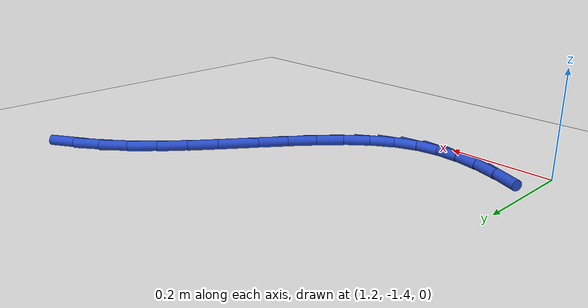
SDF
<sdf version="1.6">
 <world name="default">
  <model name="ground_plane">
   <static>1</static>
   <link name="link">
    <collision name="collision">
     <geometry><plane><normal>0 0 1</normal><size>100 100</size></plane></geometry>
     <surface><friction><ode><mu>100</mu><mu2>50</mu2></ode></friction></surface>
    </collision>
    <visual name="visual">
     <cast_shadows>0</cast_shadows>
     <geometry><plane><normal>0 0 1</normal><size>100 100</size></plane></geometry>
     <material>
      <script><uri>file://media/materials/scripts/gazebo.material</uri><name>Gazebo/WhiteGlow</name></script>
     </material>
    </visual>
   </link>
  </model>
  <model name="line">
   <link name="link_88">
    <pose>1.934969224348501 -0.8559460653646683 0.01 0 1.57 0.5697230282849092</pose>
    <collision name="collision">
     <geometry><cylinder><radius>0.01</radius><length>0.08</length></cylinder></geometry>
    </collision>
    <visual name="visual">
     <material>
      <script><name>Gazebo/Blue</name><uri>file://media/materials/scripts/gazebo.material</uri></script>
     </material>
     <geometry><cylinder><radius>0.01</radius><length>0.08</length></cylinder></geometry>
    </visual>
   </link>
   <link name="link_89">
    <pose>1.8895882587236523 -0.8850161071230084 0.01 0 1.57 0.6632413761206181</pose>
    <collision name="collision">
     <geometry><cylinder><radius>0.01</radius><length>0.08</length></cylinder></geometry>
    </collision>
    <visual name="visual">
     <material>
      <script><name>Gazebo/Blue</name><uri>file://media/materials/scripts/gazebo.material</uri></script>
     </material>
     <geometry><cylinder><radius>0.01</radius><length>0.08</length></cylinder></geometry>
    </visual>
   </link>
   <link name="link_90">
    <pose>1.8464732776989208 -0.9187023510996032 0.01 0 1.57 0.7724351772960769</pose>
    <collision name="collision">
     <geometry><cylinder><radius>0.01</radius><length>0.08</length></cylinder></geometry>
    </collision>
    <visual name="visual">
     <material>
      <script><name>Gazebo/Blue</name><uri>file://media/materials/scripts/gazebo.material</uri></script>
     </material>
     <geometry><cylinder><radius>0.01</radius><length>0.08</length></cylinder></geometry>
    </visual>
   </link>
   <link name="link_91">
    <pose>1.8061338069500812 -0.9580093084728497 0.01 0 1.57 0.8574114147132638</pose>
    <collision name="collision">
     <geometry><cylinder><radius>0.01</radius><length>0.08</length></cylinder></geometry>
    </collision>
    <visual name="visual">
     <material>
      <script><name>Gazebo/Blue</name><uri>file://media/materials/scripts/gazebo.material</uri></script>
     </material>
     <geometry><cylinder><radius>0.01</radius><length>0.08</length></cylinder></geometry>
    </visual>
   </link>
   <link name="link_92">
    <pose>1.7681992494668457 -1.0018424217646908 0.01 0 1.57 0.9145004281685984</pose>
    <collision name="collision">
     <geometry><cylinder><radius>0.01</radius><length>0.08</length></cylinder></geometry>
    </collision>
    <visual name="visual">
     <material>
      <script><name>Gazebo/Blue</name><uri>file://media/materials/scripts/gazebo.material</uri></script>
     </material>
     <geometry><cylinder><radius>0.01</radius><length>0.08</length></cylinder></geometry>
    </visual>
   </link>
   <link name="link_93">
    <pose>1.732121908428653 -1.0486847552687966 0.01 0 1.57 0.9472244759729141</pose>
    <collision name="collision">
     <geometry><cylinder><radius>0.01</radius><length>0.08</length></cylinder></geometry>
    </collision>
    <visual name="visual">
     <material>
      <script><name>Gazebo/Blue</name><uri>file://media/materials/scripts/gazebo.material</uri></script>
     </material>
     <geometry><cylinder><radius>0.01</radius><length>0.08</length></cylinder></geometry>
    </visual>
   </link>
   <link name="link_94">
    <pose>1.6973540870149424 -1.0970193732788371 0.01 0 1.57 0.9574492212198598</pose>
    <collision name="collision">
     <geometry><cylinder><radius>0.01</radius><length>0.08</length></cylinder></geometry>
    </collision>
    <visual name="visual">
     <material>
      <script><name>Gazebo/Blue</name><uri>file://media/materials/scripts/gazebo.material</uri></script>
     </material>
     <geometry><cylinder><radius>0.01</radius><length>0.08</length></cylinder></geometry>
    </visual>
   </link>
   <link name="link_95">
    <pose>1.6633480884051515 -1.1453293400884814 0.01 0 1.57 0.945104617810335</pose>
    <collision name="collision">
     <geometry><cylinder><radius>0.01</radius><length>0.08</length></cylinder></geometry>
    </collision>
    <visual name="visual">
     <material>
      <script><name>Gazebo/Blue</name><uri>file://media/materials/scripts/gazebo.material</uri></script>
     </material>
     <geometry><cylinder><radius>0.01</radius><length>0.08</length></cylinder></geometry>
    </visual>
   </link>
   <link name="link_96">
    <pose>1.6295562157787213 -1.1920977199913978 0.01 0 1.57 0.907918507119977</pose>
    <collision name="collision">
     <geometry><cylinder><radius>0.01</radius><length>0.08</length></cylinder></geometry>
    </collision>
    <visual name="visual">
     <material>
      <script><name>Gazebo/Blue</name><uri>file://media/materials/scripts/gazebo.material</uri></script>
     </material>
     <geometry><cylinder><radius>0.01</radius><length>0.08</length></cylinder></geometry>
    </visual>
   </link>
   <link name="link_97">
    <pose>1.5954307723150902 -1.2358075772812567 0.01 0 1.57 0.8410141520144264</pose>
    <collision name="collision">
     <geometry><cylinder><radius>0.01</radius><length>0.08</length></cylinder></geometry>
    </collision>
    <visual name="visual">
     <material>
      <script><name>Gazebo/Blue</name><uri>file://media/materials/scripts/gazebo.material</uri></script>
     </material>
     <geometry><cylinder><radius>0.01</radius><length>0.08</length></cylinder></geometry>
    </visual>
   </link>
   <link name="link_98">
    <pose>1.5604240611936975 -1.2749419762517271 0.01 0 1.57 0.7365914743891185</pose>
    <collision name="collision">
     <geometry><cylinder><radius>0.01</radius><length>0.08</length></cylinder></geometry>
    </collision>
    <visual name="visual">
     <material>
      <script><name>Gazebo/Blue</name><uri>file://media/materials/scripts/gazebo.material</uri></script>
     </material>
     <geometry><cylinder><radius>0.01</radius><length>0.08</length></cylinder></geometry>
    </visual>
   </link>
   <link name="link_99">
    <pose>1.5239883855939815 -1.3079839811964786 0.01 0 1.57 0.5848319900127897</pose>
    <collision name="collision">
     <geometry><cylinder><radius>0.01</radius><length>0.08</length></cylinder></geometry>
    </collision>
    <visual name="visual">
     <material>
      <script><name>Gazebo/Blue</name><uri>file://media/materials/scripts/gazebo.material</uri></script>
     </material>
     <geometry><cylinder><radius>0.01</radius><length>0.08</length></cylinder></geometry>
    </visual>
   </link>
   <link name="link_100">
    <pose>1.4855760486953822 -1.333416656409181 0.01 0 1.57 0.37915819934947703</pose>
    <collision name="collision">
     <geometry><cylinder><radius>0.01</radius><length>0.08</length></cylinder></geometry>
    </collision>
    <visual name="visual">
     <material>
      <script><name>Gazebo/Blue</name><uri>file://media/materials/scripts/gazebo.material</uri></script>
     </material>
     <geometry><cylinder><radius>0.01</radius><length>0.08</length></cylinder></geometry>
    </visual>
   </link>
   <link name="link_101">
    <pose>1.4446406767921118 -1.349726821372923 0.01 0 1.57 0.14605796509648736</pose>
    <collision name="collision">
     <geometry><cylinder><radius>0.01</radius><length>0.08</length></cylinder></geometry>
    </collision>
    <visual name="visual">
     <material>
      <script><name>Gazebo/Blue</name><uri>file://media/materials/scripts/gazebo.material</uri></script>
     </material>
     <geometry><cylinder><radius>0.01</radius><length>0.08</length></cylinder></geometry>
    </visual>
   </link>
   <link name="link_102">
    <pose>1.4009035026506933 -1.3561608011056452 0.01 0 1.57 -0.05443720762735771</pose>
    <collision name="collision">
     <geometry><cylinder><radius>0.01</radius><length>0.08</length></cylinder></geometry>
    </collision>
    <visual name="visual">
     <material>
      <script><name>Gazebo/Blue</name><uri>file://media/materials/scripts/gazebo.material</uri></script>
     </material>
     <geometry><cylinder><radius>0.01</radius><length>0.08</length></cylinder></geometry>
    </visual>
   </link>
   <link name="link_103">
    <pose>1.354676613256933 -1.3536418496097087 0.01 0 1.57 -0.2104792739374386</pose>
    <collision name="collision">
     <geometry><cylinder><radius>0.01</radius><length>0.08</length></cylinder></geometry>
    </collision>
    <visual name="visual">
     <material>
      <script><name>Gazebo/Blue</name><uri>file://media/materials/scripts/gazebo.material</uri></script>
     </material>
     <geometry><cylinder><radius>0.01</radius><length>0.08</length></cylinder></geometry>
    </visual>
   </link>
   <link name="link_104">
    <pose>1.306351088202681 -1.343317413228509 0.01 0 1.57 -0.32722293359155685</pose>
    <collision name="collision">
     <geometry><cylinder><radius>0.01</radius><length>0.08</length></cylinder></geometry>
    </collision>
    <visual name="visual">
     <material>
      <script><name>Gazebo/Blue</name><uri>file://media/materials/scripts/gazebo.material</uri></script>
     </material>
     <geometry><cylinder><radius>0.01</radius><length>0.08</length></cylinder></geometry>
    </visual>
   </link>
   <link name="link_105">
    <pose>1.2563180070797904 -1.3263349383054417 0.01 0 1.57 -0.41286207660054647</pose>
    <collision name="collision">
     <geometry><cylinder><radius>0.01</radius><length>0.08</length></cylinder></geometry>
    </collision>
    <visual name="visual">
     <material>
      <script><name>Gazebo/Blue</name><uri>file://media/materials/scripts/gazebo.material</uri></script>
     </material>
     <geometry><cylinder><radius>0.01</radius><length>0.08</length></cylinder></geometry>
    </visual>
   </link>
  </model>
 </world>
</sdf>
